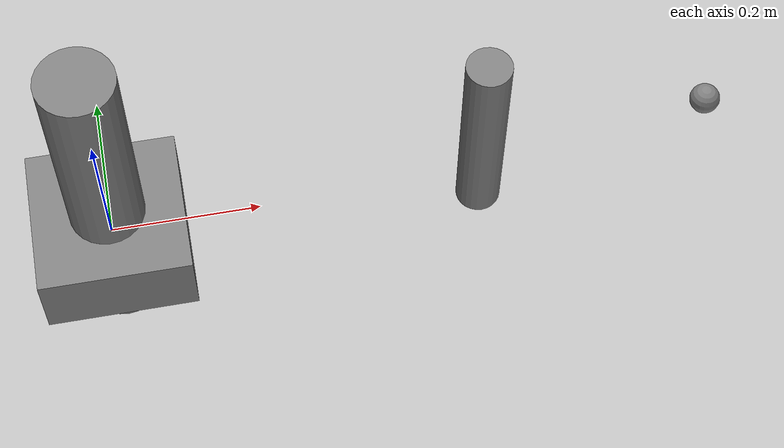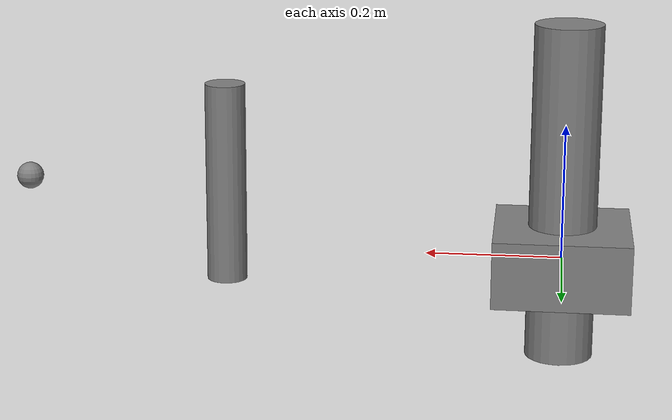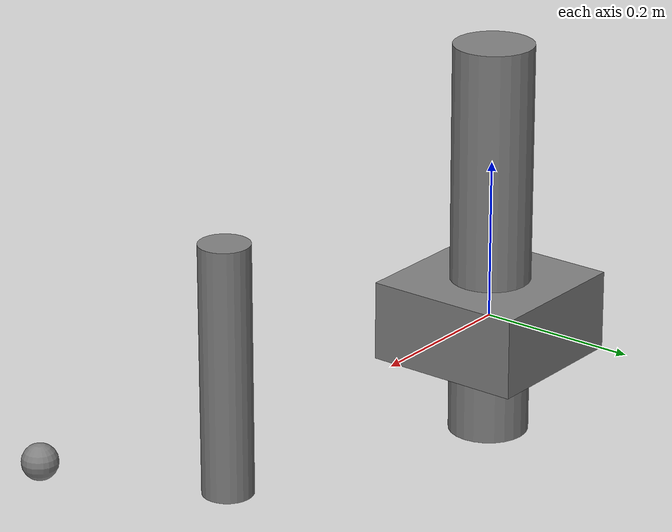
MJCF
<?xml version="1.0"?>
<mujoco model="simple_arm">

  <worldbody>

    <!-- Base body -->
    <body name="base" pos="0 0 0">
      <inertial mass="1.0" pos="0 0 0" diaginertia="0.1 0.1 0.1"/>
      <geom type="box" size="0.1 0.1 0.05"/>

      <!-- First link -->
      <body name="link1" pos="0 0 0.1">
        <inertial mass="0.5" pos="0.25 0 0" diaginertia="0.05 0.05 0.05"/>
        <joint name="joint1" type="hinge" axis="0 0 1" range="-3.14159 3.14159"/>
        <geom type="cylinder" size="0.05 0.25"/>

        <!-- Second link -->
        <body name="link2" pos="0.5 0 0">
          <inertial mass="0.3" pos="0.15 0 0" diaginertia="0.03 0.03 0.03"/>
          <joint name="joint2" type="hinge" axis="0 0 1" range="-1.57 1.57"/>
          <geom type="cylinder" size="0.03 0.15"/>

          <!-- End effector -->
          <body name="end_effector" pos="0.3 0 0">
            <inertial mass="0.1" pos="0 0 0" diaginertia="0.01 0.01 0.01"/>
            <geom type="sphere" size="0.02"/>
          </body>

        </body>
      </body>
    </body>

  </worldbody>

</mujoco>
